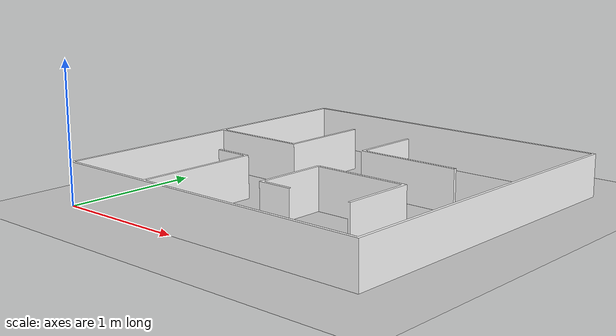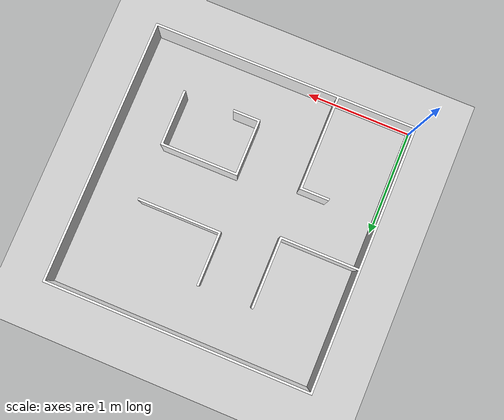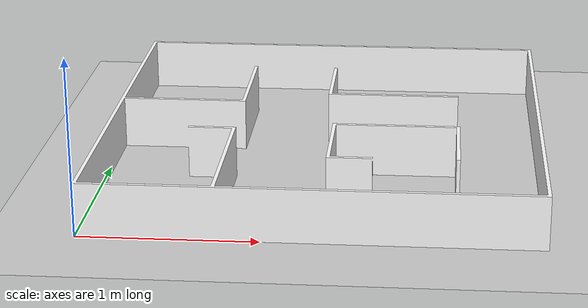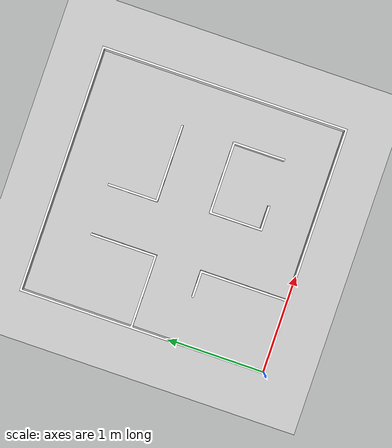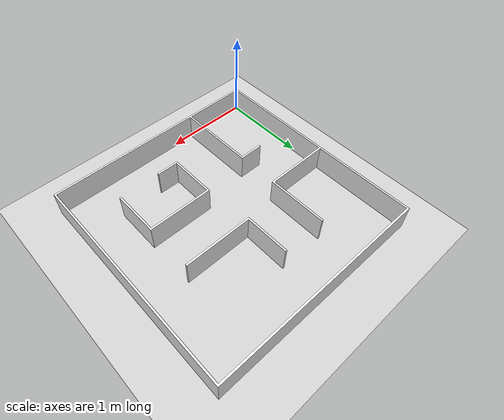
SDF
<?xml version="1.0"?>
<sdf version="1.4">
  <world name="default">
    <include>
      <uri>model://ground_plane</uri>
    </include>
    <include>
      <uri>model://sun</uri>
    </include>
    <model name="maze">
      <pose>0 0 0  0 0 0</pose>
      <static>true</static>
      <link name="body">
        <visual name="visual">
          <geometry>
            <mesh><uri>model://mazes/meshes/maze.dae</uri></mesh>
          </geometry>
        </visual>
        <collision name="collision">
        <pose>0 0 0 0 0 0</pose>
        <geometry>
          <mesh>
            <uri>model://mazes/meshes/maze.dae</uri>
          </mesh>
        </geometry>
        <surface>
          <friction>
            <ode>
              <mu>1.0</mu>
              <mu2>1.0</mu2>
            </ode>
          </friction>
          <contact>
            <ode>
              <kp>10000000.0</kp>
              <kd>1.0</kd>
              <min_depth>0.001</min_depth>
              <max_vel>0.1</max_vel>
            </ode>
          </contact>
        </surface>
      </collision>
      </link>
    </model>
    <link name="world"/>
      <joint name="fixed" type="fixed">
      <parent link="world"/>
      <child link="link1"/>
  </joint>
  </world>
</sdf>
